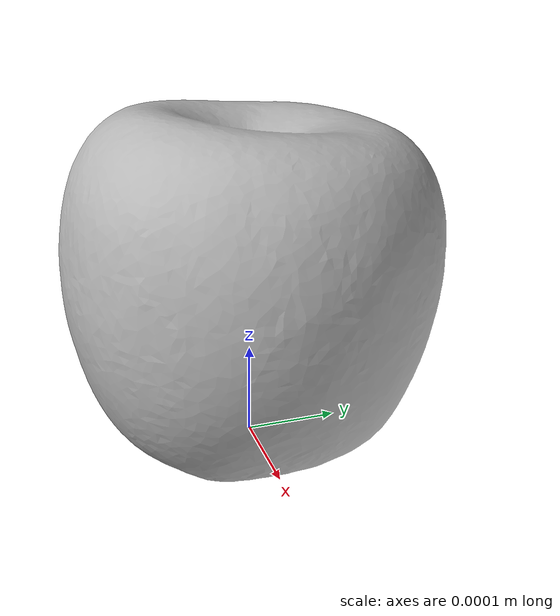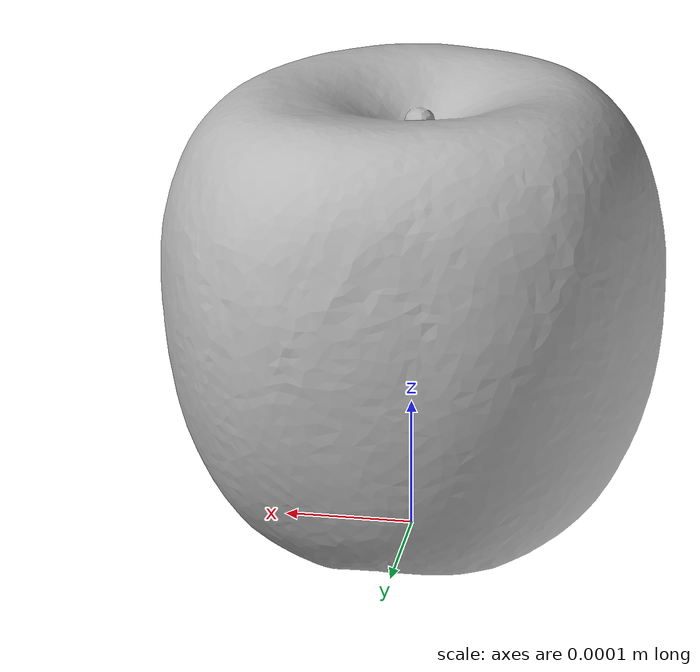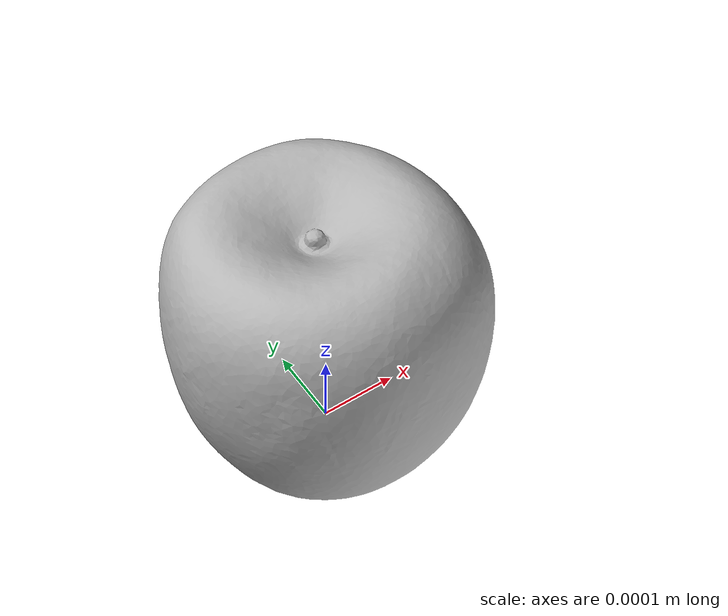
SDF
<?xml version="1.0" ?>
<sdf version="1.6">
  <model name="apple">
    <static>true</static>
    <link name="link">
      <collision name="collision">
        <pose>0 0 0 0 0 0</pose>
        <geometry>
          <mesh>
            <scale>0.0005 0.0005 0.0005</scale>
            <uri>model://apple/meshes/apple.obj</uri>
          </mesh>
        </geometry>
      </collision>
      <visual name="visual">
        <pose>0 0 0 1.57079632679 0 -1.57079632679</pose>
        <geometry>
          <mesh>
            <scale>0.0005 0.0005 0.0005</scale>
            <uri>model://apple/meshes/apple.obj</uri>
          </mesh>
        </geometry>
      </visual>
    </link>
  </model>
</sdf>
